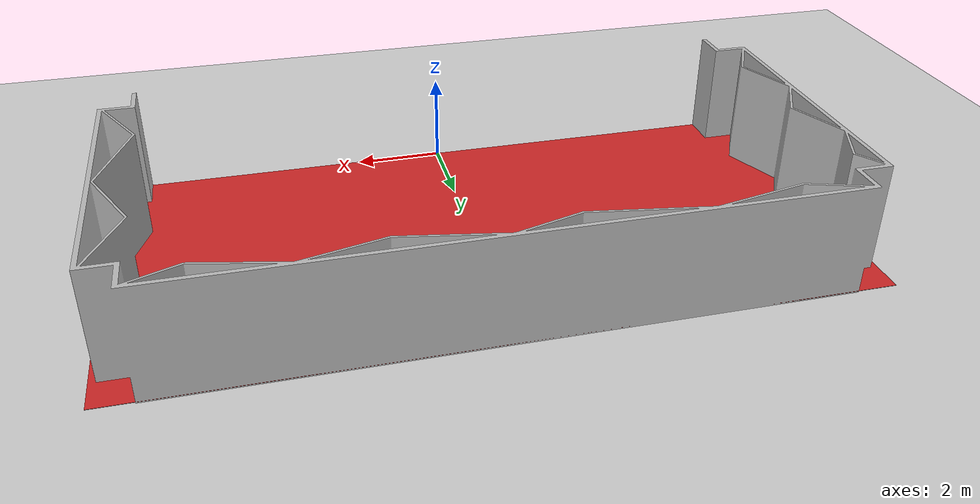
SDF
<?xml version="1.0" ?>
<sdf version="1.4">
  <world name="playground">

    <!-- Ground and lighting -->
    <include>
      <uri>model://ground_plane</uri>
    </include>
    <include>
      <uri>model://sun</uri>
    </include>

    <!-- Camera view -->
    <gui>
      <camera name="user_camera">
        <pose>17.34 -12.43 10.92 0 0.44 2.42</pose> <!-- x y z roll pitch yaw -->
      </camera>
    </gui>

    <!-- Tunnel model -->
    <model name="test_site">
      <static>true</static>
      <link name="test_site_link">
        <pose>-7.85 0 2.45 -1.570796327 0 0</pose>
        <collision name="site_collision">
          <geometry>
            <mesh>
              <uri>file://test_site_tunnel.STL</uri>
              <scale>1 1 1</scale>
            </mesh>
          </geometry>
        </collision>
        <visual name="site_visual">
          <geometry>
            <mesh>
              <uri>file://test_site_tunnel.STL</uri>
              <scale>1 1 1</scale>
            </mesh>
          </geometry>
        </visual>
      </link>
    </model>

    <model name="tunnel_overlay_box">
  <static>true</static>
  <link name="link">
    <visual name="visual">
      <geometry>
        <box>
          <size>16 8 0.01</size> <!-- width (x), depth (y), height -->
        </box>
      </geometry>
      <material>
        <script>
          <uri>file://media/materials/scripts/gazebo.material</uri>
          <name>Gazebo/Red</name>
        </script>
        <ambient>1 0 0 0.5</ambient>     <!-- red color -->
        <diffuse>1 0 0 0.5</diffuse>     <!-- semi-transparent -->
      </material>
    </visual>
    <pose>0 4.0 0.01 0 0 0</pose> <!-- center of the box -->
  </link>
</model>

  </world>
</sdf>
